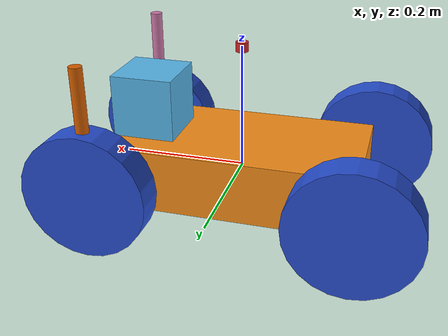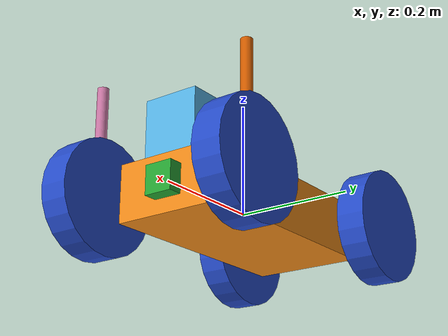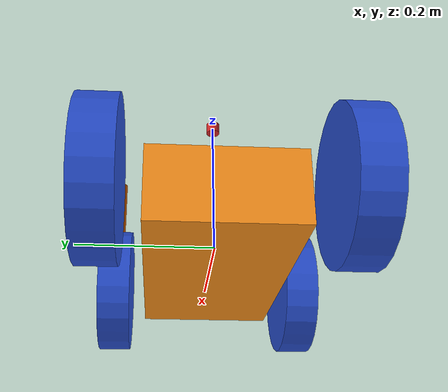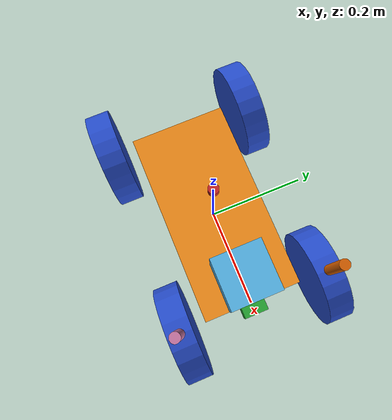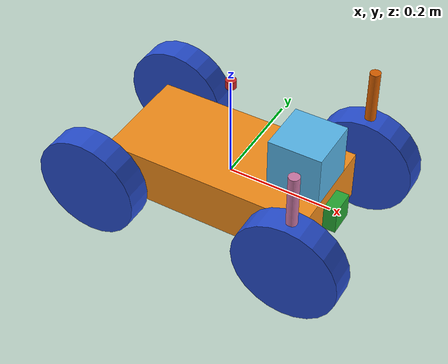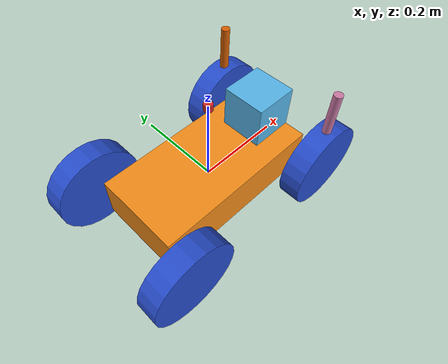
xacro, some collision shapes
<?xml version='1.0'?>

<robot name="myrobot" xmlns:xacro="http://www.ros.org/wiki/xacro">

    <xacro:property name="cameraSize" value="0.05" />
    <xacro:property name="cameraMass" value="0.1" />

    <link name='chassis'>
        <pose>0 0 0.1 0 0 0</pose>

        <inertial>
            <mass value="15.0" />
            <origin xyz="0.0 0 0.1" rpy=" 0 0 0" />
            <inertia
                ixx="0.1" ixy="0" ixz="0"
                iyy="0.1" iyz="0"
                izz="0.1"
            />
        </inertial>

        <collision name='collision'>
            <geometry>
                <box size=".4 .2 .1" />
            </geometry>
        </collision>

        <visual name='chassis_visual'>
            <origin xyz="0 0 0" rpy=" 0 0 0" />
            <geometry>
                <box size=".4 .2 .1" />
            </geometry>
            <material name="orange" />
        </visual>

    </link>

    <!-- Back wheel -->
    <link name="left_wheel">
        <!--origin
        xyz="0.1 0.13 0.1" rpy="0 1.5707 1.5707"/-->
        <collision name="collision">
            <origin xyz="0 0 0" rpy="0 1.5707 1.5707" />
            <geometry>
                <cylinder radius="0.1" length="0.05" />
            </geometry>
        </collision>
        <visual name="left_wheel_visual">
            <origin xyz="0 0 0" rpy="0 1.5707 1.5707" />
            <geometry>
                <cylinder radius="0.1" length="0.05" />
            </geometry>
            <material name="blue" />
        </visual>
        <inertial>
            <origin xyz="0 0 0" rpy="0 1.5707 1.5707" />
            <mass value="5" />
            <inertia
                ixx=".1" ixy="0.0" ixz="0.0"
                iyy=".1" iyz="0.0"
                izz=".1" />
        </inertial>
    </link>

    <link name="right_wheel">
        <!--origin
        xyz="0.1 -0.13 0.1" rpy="0 1.5707 1.5707"/-->
        <collision name="collision">
            <origin xyz="0 0 0" rpy="0 1.5707 1.5707" />
            <geometry>
                <cylinder radius="0.1" length="0.05" />
            </geometry>
        </collision>
        <visual name="right_wheel_visual">
            <origin xyz="0 0 0" rpy="0 1.5707 1.5707" />
            <geometry>
                <cylinder radius="0.1" length="0.05" />
            </geometry>
            <material name="blue" />
        </visual>
        <inertial>
            <origin xyz="0 0 0" rpy="0 1.5707 1.5707" />
            <mass value="5" />
            <inertia
                ixx=".1" ixy="0.0" ixz="0.0"
                iyy=".1" iyz="0.0"
                izz=".1" />
        </inertial>
    </link>

    <joint type="continuous" name="left_wheel_hinge">
        <origin xyz="-0.2 0.15 0" rpy="0 0 0" />
        <!--origin
        xyz="0.1 0.13 0" rpy="0 1.5707 1.5707"/-->
        <child link="left_wheel" />
        <parent link="chassis" />
        <axis xyz="0 1 0" rpy="0 0 0" />
        <limit effort="10000" velocity="1000" />
        <joint_properties damping="1.0" friction="1.0" />
    </joint>

    <joint type="continuous" name="right_wheel_hinge">
        <origin xyz="-0.2 -0.15 0" rpy="0 0 0" />
        <!--origin
        xyz="0.1 -0.13 0" rpy="0 1.5707 1.5707"/-->
        <child link="right_wheel" />
        <parent link="chassis" />
        <axis xyz="0 1 0" rpy="0 0 0" />
        <limit effort="10000" velocity="1000" />
        <joint_properties damping="1.0" friction="1.0" />
    </joint>

    <!-- Front wheel -->
    <link name="front_left_wheel">
        <!--origin
        xyz="0.1 0.13 0.1" rpy="0 1.5707 1.5707"/-->
        <collision name="collision">
            <origin xyz="0 0 0" rpy="0 1.5707 1.5707" />
            <geometry>
                <cylinder radius="0.1" length="0.05" />
            </geometry>
        </collision>
        <visual name="left_wheel_visual">
            <origin xyz="0 0 0" rpy="0 1.5707 1.5707" />
            <geometry>
                <cylinder radius="0.1" length="0.05" />
            </geometry>
            <material name="blue" />
        </visual>
        <inertial>
            <origin xyz="0 0 0" rpy="0 1.5707 1.5707" />
            <mass value="5" />
            <inertia
                ixx=".1" ixy="0.0" ixz="0.0"
                iyy=".1" iyz="0.0"
                izz=".1" />
        </inertial>
    </link>

    <link name="front_right_wheel">
        <!--origin
        xyz="0.1 -0.13 0.1" rpy="0 1.5707 1.5707"/-->
        <collision name="collision">
            <origin xyz="0 0 0" rpy="0 1.5707 1.5707" />
            <geometry>
                <cylinder radius="0.1" length="0.05" />
            </geometry>
        </collision>
        <visual name="right_wheel_visual">
            <origin xyz="0 0 0" rpy="0 1.5707 1.5707" />
            <geometry>
                <cylinder radius="0.1" length="0.05" />
            </geometry>
            <material name="blue" />
        </visual>
        <inertial>
            <origin xyz="0 0 0" rpy="0 1.5707 1.5707" />
            <mass value="5" />
            <inertia
                ixx=".1" ixy="0.0" ixz="0.0"
                iyy=".1" iyz="0.0"
                izz=".1" />
        </inertial>
    </link>

    <!-- Front Steer -->
    <link name="front_left_steer">
        <!--origin
        xyz="0.1 0.13 0.1" rpy="0 1.5707 1.5707"/-->
        <collision name="collision">
            <origin xyz="0 0 0" rpy="0 0 0" />
            <geometry>
                <cylinder radius="0.01" length="0.2" />
            </geometry>
        </collision>
        <visual name="left_steer_visual">
            <origin xyz="0 0 0" rpy="0 0 0" />
            <geometry>
                <cylinder radius="0.01" length="0.2" />
            </geometry>
        </visual>
        <inertial>
            <origin xyz="0 0 0" rpy="0 0 0" />
            <mass value="5" />
            <inertia
                ixx=".1" ixy="0.0" ixz="0.0"
                iyy=".1" iyz="0.0"
                izz=".1" />
        </inertial>
    </link>

    <link name="front_right_steer">
        <!--origin
        xyz="0.1 -0.13 0.1" rpy="0 1.5707 1.5707"/-->
        <collision name="collision">
            <origin xyz="0 0 0" rpy="0 0 0" />
            <geometry>
                <cylinder radius="0.01" length="0.2" />
            </geometry>
        </collision>
        <visual name="right_steer_visual">
            <origin xyz="0 0 0" rpy="0 0 0" />
            <geometry>
                <cylinder radius="0.01" length="0.2" />
            </geometry>
        </visual>
        <inertial>
            <origin xyz="0 0 0" rpy="0 0 0" />
            <mass value="5" />
            <inertia
                ixx=".1" ixy="0.0" ixz="0.0"
                iyy=".1" iyz="0.0"
                izz=".1" />
        </inertial>
    </link>

    <joint type="continuous" name="front_left_wheel_hinge">
        <origin xyz="0.0 0.0 -0.1" rpy="0 0 0" />
        <!--origin
        xyz="0.1 0.13 0" rpy="0 1.5707 1.5707"/-->
        <child link="front_left_wheel" />
        <parent link="front_left_steer" />
        <axis xyz="0 1 0" rpy="0 0 0" />
        <limit effort="10000" velocity="1000" />
        <joint_properties damping="1.0" friction="1.0" />
    </joint>

    <joint type="continuous" name="front_right_wheel_hinge">
        <origin xyz="0. 0 -0.1" rpy="0 0 0" />
        <!--origin
        xyz="0.1 -0.13 0" rpy="0 1.5707 1.5707"/-->
        <child link="front_right_wheel" />
        <parent link="front_right_steer" />
        <axis xyz="0 1 0" rpy="0 0 0" />
        <limit effort="10000" velocity="1000" />
        <joint_properties damping="1.0" friction="1.0" />
    </joint>

    <joint type="continuous" name="front_left_steer_hinge">
        <origin xyz="0.2 0.15 0.1" rpy="0 0 0" />
        <!--origin
        xyz="0.1 0.13 0" rpy="0 1.5707 1.5707"/-->
        <child link="front_left_steer" />
        <parent link="chassis" />
        <axis xyz="0 0 1" />
    </joint>

    <joint type="continuous" name="front_right_steer_hinge">
        <origin xyz="0.2 -0.15 0.1" rpy="0 0 0" />
        <!--origin
        xyz="0.1 -0.13 0" rpy="0 1.5707 1.5707"/-->
        <child link="front_right_steer" />
        <parent link="chassis" />
        <axis xyz="0 0 1" />
    </joint>

    <!-- Sensor links and fixed joints -->
    <link name="center_laser_link">
        <visual>
            <geometry>
                <cylinder length="0.015" radius="0.01" />
            </geometry>
            <material name="red" />
        </visual>

        <collision>
            <geometry>
                <cylinder length="0.35" radius="0.1" />
            </geometry>
        </collision>
        <inertial>
            <mass value="0.001" />
            <inertia ixx="0.000001" ixy="0.0" ixz="0.0" iyy="0.000001" iyz="0.0" izz="0.000001" />
        </inertial>
    </link>
    <joint name="center_laser_joint" type="fixed">
        <parent link="chassis" />
        <child link="center_laser_link" />
        <origin xyz="0 0.0 0.2" rpy="0 0 -3.1415" />
    </joint>

    <link name="camera">
        <collision>
            <origin xyz="0 0 0" rpy="0 0 0" />
            <geometry>
                <box size="${cameraSize} ${cameraSize} ${cameraSize}" />
            </geometry>
        </collision>

        <visual>
            <origin xyz="0 0 0" rpy="0 0 0" />
            <geometry>
                <box size="${cameraSize} ${cameraSize} ${cameraSize}" />
            </geometry>
            <material name="green" />
        </visual>

        <inertial>
            <mass value="${cameraMass}" />
            <origin xyz="0 0 0" rpy="0 0 0" />
            <box_inertia m="${cameraMass}" x="${cameraSize}" y="${cameraSize}" z="${cameraSize}" />
            <inertia ixx="1e-6" ixy="0" ixz="0" iyy="1e-6" iyz="0" izz="1e-6" />
        </inertial>
    </link>

    <joint name="camera_joint" type="fixed">
        <axis xyz="0 1 0" />
        <origin xyz=".2 0 0" rpy="0 0 0" />
        <parent link="chassis" />
        <child link="camera" />
    </joint>

    <joint name="hokuyo_joint" type="fixed">
        <axis xyz="0 1 0" />
        <origin xyz=".15 0 .1" rpy="0 0 0" />
        <parent link="chassis" />
        <child link="hokuyo" />
    </joint>

    <!-- Hokuyo Laser -->
    <link name="hokuyo">
        <collision>
            <origin xyz="0 0 0" rpy="0 0 0" />
            <geometry>
                <box size="0.1 0.1 0.1" />
            </geometry>
        </collision>

        <visual>
            <origin xyz="0 0 0" rpy="0 0 0" />
            <geometry>
                <mesh filename="package://osiris_bot/meshes/hokuyo.dae" />
            </geometry>
        </visual>

        <inertial>
            <mass value="1e-5" />
            <origin xyz="0 0 0" rpy="0 0 0" />
            <inertia ixx="1e-6" ixy="0" ixz="0" iyy="1e-6" iyz="0" izz="1e-6" />
        </inertial>
    </link>

</robot>
